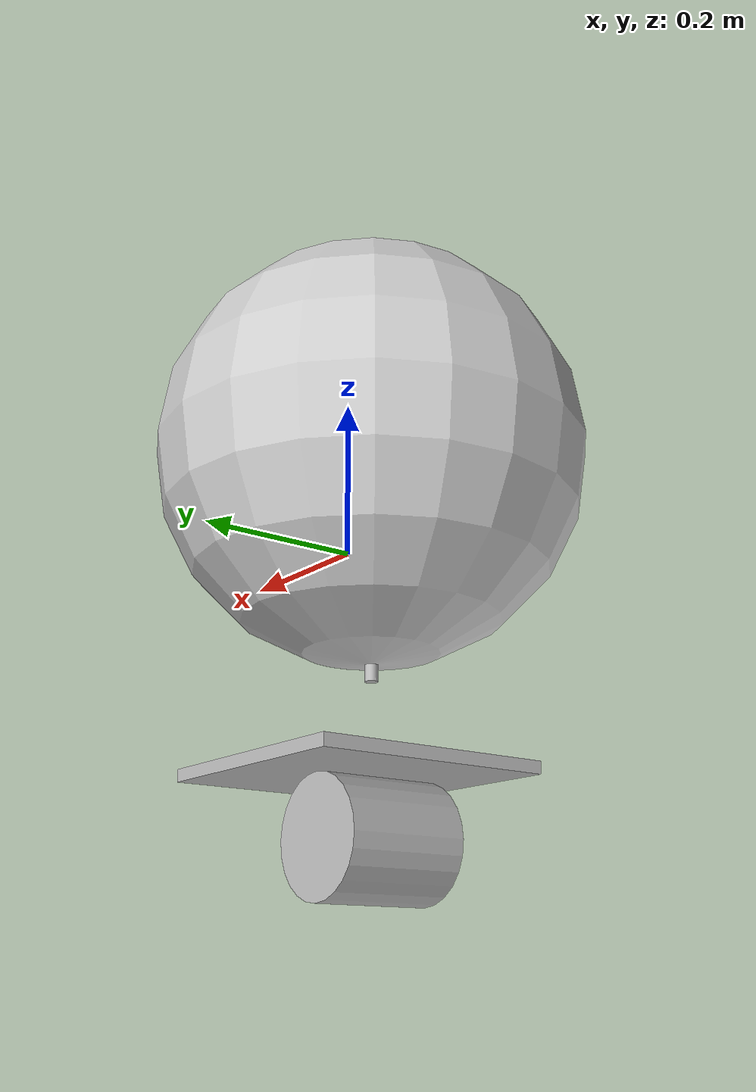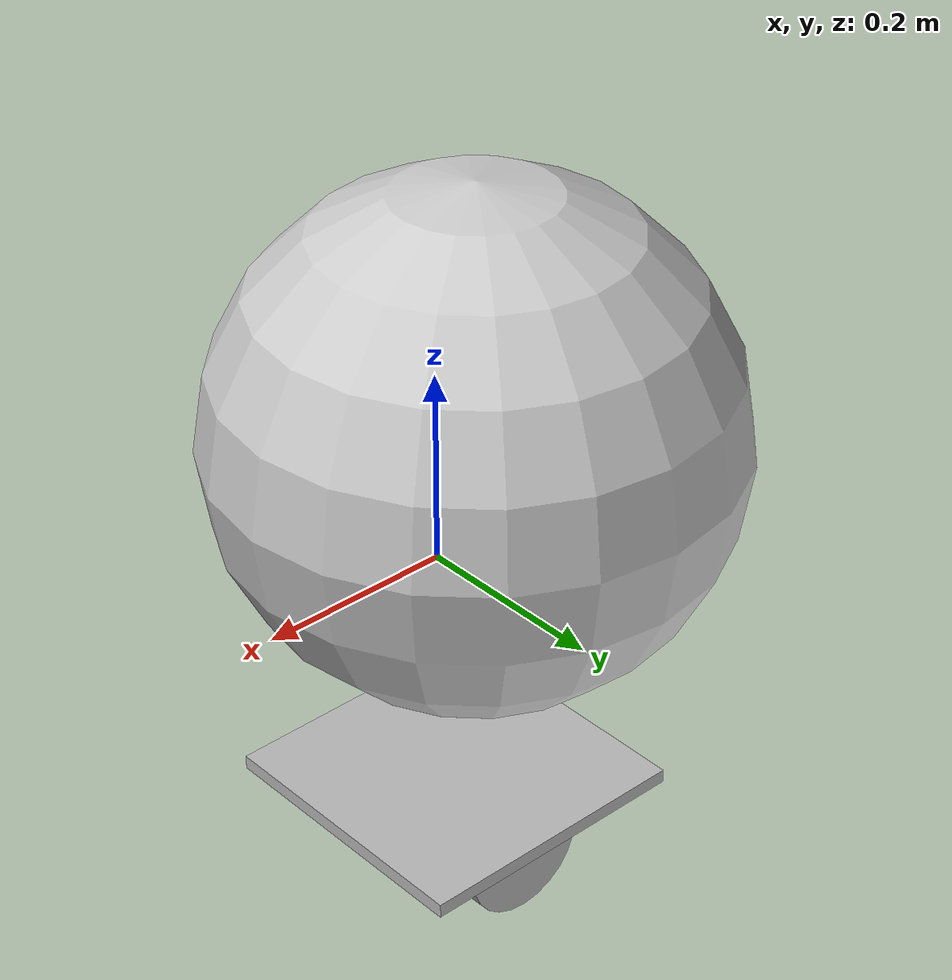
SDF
<?xml version='1.0' encoding='utf-8'?>
<sdf version="1.6">
  <model name="ctu_cras_norlab_balloon_sensor_config_1">
    <link name="base_link">
      <inertial>
        <mass>0.001</mass>
        <inertia>
          <ixx>1.66667e-10</ixx>
          <ixy>0</ixy>
          <ixz>0</ixz>
          <iyy>1.66667e-10</iyy>
          <iyz>0</iyz>
          <izz>1.66667e-10</izz>
        </inertia>
      </inertial>
    </link>
    <link name="reel">
      <pose>-0.05 0 -0.35 0 -0 0</pose>
      <inertial>
        <mass>1</mass>
        <inertia>
          <ixx>1.66667e-07</ixx>
          <ixy>0</ixy>
          <ixz>0</ixz>
          <iyy>1.66667e-07</iyy>
          <iyz>0</iyz>
          <izz>1.66667e-07</izz>
        </inertia>
      </inertial>
      <collision name="reel_collision">
        <pose>0 0 0 -1.5707963267948966 1.5707963267948966 0</pose>
        <geometry>
          <cylinder>
            <length>0.15</length>
            <radius>0.07</radius>
          </cylinder>
        </geometry>
      </collision>
      <visual name="reel_visual">
        <pose>0 0 0 -1.5707963267948966 1.5707963267948966 0</pose>
        <geometry>
          <cylinder>
            <length>0.15</length>
            <radius>0.07</radius>
          </cylinder>
        </geometry>
      </visual>
      <visual name="reel_visual_1">
        <pose>0.03 0 0.08 0 -0 0</pose>
        <geometry>
          <mesh>
            <scale>2 2 1</scale>
            <uri>meshes/apriltag.dae</uri>
          </mesh>
        </geometry>
      </visual>
    </link>
    <joint name="intermediate_j" type="fixed">
      <child>reel</child>
      <parent>base_link</parent>
      <axis>
        <dynamics>
          <spring_reference>0</spring_reference>
          <spring_stiffness>0</spring_stiffness>
        </dynamics>
        <xyz>0 0 1</xyz>
        <use_parent_model_frame>0</use_parent_model_frame>
        <limit>
          <lower>-1e+16</lower>
          <upper>1e+16</upper>
        </limit>
      </axis>
      <physics>
        <ode>
          <limit>
            <cfm>0</cfm>
            <erp>0.2</erp>
          </limit>
        </ode>
      </physics>
    </joint>
    <link name="ball_j_x">
      <pose>-0.05 0 -0.35 0 -0 0</pose>
      <inertial>
        <mass>0.001</mass>
        <inertia>
          <ixx>1.66667e-10</ixx>
          <ixy>0</ixy>
          <ixz>0</ixz>
          <iyy>1.66667e-10</iyy>
          <iyz>0</iyz>
          <izz>1.66667e-10</izz>
        </inertia>
      </inertial>
    </link>
    <joint name="ball_j_x_j" type="revolute">
      <child>ball_j_x</child>
      <parent>reel</parent>
      <axis>
        <xyz>1 0 0</xyz>
        <limit>
          <lower>-0.3</lower>
          <upper>0.3</upper>
          <effort>1</effort>
          <velocity>1</velocity>
        </limit>
        <dynamics>
          <damping>0</damping>
          <friction>0.05</friction>
          <spring_reference>0</spring_reference>
          <spring_stiffness>0</spring_stiffness>
        </dynamics>
        <use_parent_model_frame>0</use_parent_model_frame>
      </axis>
    </joint>
    <link name="ball_j_y">
      <pose>-0.05 0 -0.35 0 -0 0</pose>
      <inertial>
        <mass>0.001</mass>
        <inertia>
          <ixx>1.66667e-10</ixx>
          <ixy>0</ixy>
          <ixz>0</ixz>
          <iyy>1.66667e-10</iyy>
          <iyz>0</iyz>
          <izz>1.66667e-10</izz>
        </inertia>
      </inertial>
    </link>
    <joint name="ball_j_y_j" type="revolute">
      <child>ball_j_y</child>
      <parent>ball_j_x</parent>
      <axis>
        <xyz>0 1 0</xyz>
        <limit>
          <lower>-0.3</lower>
          <upper>0.3</upper>
          <effort>1</effort>
          <velocity>1</velocity>
        </limit>
        <dynamics>
          <damping>0</damping>
          <friction>0.05</friction>
          <spring_reference>0</spring_reference>
          <spring_stiffness>0</spring_stiffness>
        </dynamics>
        <use_parent_model_frame>0</use_parent_model_frame>
      </axis>
    </joint>
    <link name="string">
      <pose>-0.05 0 -0.35 0 -0 0</pose>
      <inertial>
        <mass>0.001</mass>
        <inertia>
          <ixx>1.66667e-10</ixx>
          <ixy>0</ixy>
          <ixz>0</ixz>
          <iyy>1.66667e-10</iyy>
          <iyz>0</iyz>
          <izz>1.66667e-10</izz>
        </inertia>
      </inertial>
    </link>
    <joint name="ball_j_z_j" type="revolute">
      <child>string</child>
      <parent>ball_j_y</parent>
      <axis>
        <xyz>0 0 1</xyz>
        <limit>
          <lower>-1e+16</lower>
          <upper>1e+16</upper>
        </limit>
        <dynamics>
          <damping>0</damping>
          <friction>0.05</friction>
          <spring_reference>0</spring_reference>
          <spring_stiffness>0</spring_stiffness>
        </dynamics>
        <use_parent_model_frame>0</use_parent_model_frame>
      </axis>
    </joint>
    <link name="balloon">
      <pose>-0.05 0 0.115 0 -0 0</pose>
      <inertial>
        <mass>0.05</mass>
        <inertia>
          <ixx>0.0014045</ixx>
          <ixy>0</ixy>
          <ixz>0</ixz>
          <iyy>0.0014045</iyy>
          <iyz>0</iyz>
          <izz>0.0014045</izz>
        </inertia>
      </inertial>
      <collision name="balloon_collision">
        <geometry>
          <sphere>
            <radius>0.265</radius>
          </sphere>
        </geometry>
      </collision>
      <visual name="balloon_visual">
        <geometry>
          <sphere>
            <radius>0.265</radius>
          </sphere>
        </geometry>
        <material>
          <ambient>0 0 0 0</ambient>
          <diffuse>0.8 0.8 0.8 1</diffuse>
          <specular>1 1 1 0.5</specular>
          <emissive>1 1 1 0.1</emissive>
        </material>
      </visual>
    </link>
    <joint name="string_prismatic_j" type="prismatic">
      <child>balloon</child>
      <parent>string</parent>
      <axis>
        <xyz>0 0 1</xyz>
        <limit>
          <lower>0</lower>
          <upper>15</upper>
          <effort>1</effort>
          <velocity>0.5</velocity>
        </limit>
        <dynamics>
          <spring_reference>0</spring_reference>
          <spring_stiffness>0</spring_stiffness>
        </dynamics>
        <use_parent_model_frame>0</use_parent_model_frame>
      </axis>
    </joint>
    <link name="camera">
      <pose>-0.05 0 -0.16 -3.1415926535897931 0 0</pose>
      <inertial>
        <mass>0.022</mass>
        <inertia>
          <ixx>1.08533e-06</ixx>
          <ixy>0</ixy>
          <ixz>0</ixz>
          <iyy>1.08533e-06</iyy>
          <iyz>0</iyz>
          <izz>7.04e-07</izz>
        </inertia>
      </inertial>
      <collision name="camera_collision">
        <geometry>
          <cylinder>
            <length>0.02</length>
            <radius>0.008</radius>
          </cylinder>
        </geometry>
      </collision>
      <visual name="camera_visual">
        <geometry>
          <cylinder>
            <length>0.02</length>
            <radius>0.008</radius>
          </cylinder>
        </geometry>
      </visual>
      <light name="light_0" type="spot">
        <pose>0.02 0 0 3.1415926535897931 -0.392699 3.1415926535897931</pose>
        <attenuation>
          <range>20</range>
          <linear>0</linear>
          <constant>0.1</constant>
          <quadratic>0.0025</quadratic>
        </attenuation>
        <diffuse>0.8 0.8 0.5 1</diffuse>
        <specular>0.8 0.8 0.5 1</specular>
        <spot>
          <inner_angle>1.0472</inner_angle>
          <outer_angle>1.5708</outer_angle>
          <falloff>1</falloff>
        </spot>
        <direction>0 0 -1</direction>
      </light>
      <light name="light_1" type="spot">
        <pose>0.02 0 0 3.1415926535897931 -0.392699 -1.0472</pose>
        <attenuation>
          <range>20</range>
          <linear>0</linear>
          <constant>0.1</constant>
          <quadratic>0.0025</quadratic>
        </attenuation>
        <diffuse>0.8 0.8 0.5 1</diffuse>
        <specular>0.8 0.8 0.5 1</specular>
        <spot>
          <inner_angle>1.0472</inner_angle>
          <outer_angle>1.5708</outer_angle>
          <falloff>1</falloff>
        </spot>
        <direction>0 0 -1</direction>
      </light>
      <light name="light_2" type="spot">
        <pose>0.02 0 0 3.1415926535897931 -0.392699 1.0472</pose>
        <attenuation>
          <range>20</range>
          <linear>0</linear>
          <constant>0.1</constant>
          <quadratic>0.0025</quadratic>
        </attenuation>
        <diffuse>0.8 0.8 0.5 1</diffuse>
        <specular>0.8 0.8 0.5 1</specular>
        <spot>
          <inner_angle>1.0472</inner_angle>
          <outer_angle>1.5708</outer_angle>
          <falloff>1</falloff>
        </spot>
        <direction>0 0 -1</direction>
      </light>
    </link>
    <joint name="camera_j" type="fixed">
      <child>camera</child>
      <parent>balloon</parent>
      <axis>
        <dynamics>
          <spring_reference>0</spring_reference>
          <spring_stiffness>0</spring_stiffness>
        </dynamics>
        <xyz>0 0 1</xyz>
        <use_parent_model_frame>0</use_parent_model_frame>
        <limit>
          <lower>-1e+16</lower>
          <upper>1e+16</upper>
        </limit>
      </axis>
      <physics>
        <ode>
          <limit>
            <cfm>0</cfm>
            <erp>0.2</erp>
          </limit>
        </ode>
      </physics>
    </joint>
    <link name="camera_0">
      <pose>-0.03 0 -0.16 -3.1415926535897931 0.785398 0</pose>
      <inertial>
        <mass>1e-05</mass>
        <inertia>
          <ixx>1.66667e-12</ixx>
          <ixy>0</ixy>
          <ixz>0</ixz>
          <iyy>1.66667e-12</iyy>
          <iyz>0</iyz>
          <izz>1.66667e-12</izz>
        </inertia>
      </inertial>
      <sensor name="camera" type="camera">
        <update_rate>3</update_rate>
        <camera>
          <horizontal_fov>1.5708</horizontal_fov>
          <image>
            <width>800</width>
            <height>600</height>
            <format>R8G8B8</format>
          </image>
          <clip>
            <near>0.05</near>
            <far>50</far>
          </clip>
          <noise>
            <type>gaussian</type>
            <mean>0</mean>
            <stddev>0.007</stddev>
          </noise>
        </camera>
      </sensor>
    </link>
    <joint name="camera_0_j" type="fixed">
      <child>camera_0</child>
      <parent>camera</parent>
      <axis>
        <dynamics>
          <spring_reference>0</spring_reference>
          <spring_stiffness>0</spring_stiffness>
        </dynamics>
        <xyz>0 0 1</xyz>
        <use_parent_model_frame>0</use_parent_model_frame>
        <limit>
          <lower>-1e+16</lower>
          <upper>1e+16</upper>
        </limit>
      </axis>
      <physics>
        <ode>
          <limit>
            <cfm>0</cfm>
            <erp>0.2</erp>
          </limit>
        </ode>
      </physics>
    </joint>
    <link name="camera_1">
      <pose>-0.03 0 -0.16 3.1415926535897931 0.785398 1.5707963267948966</pose>
      <inertial>
        <mass>1e-05</mass>
        <inertia>
          <ixx>1.66667e-12</ixx>
          <ixy>0</ixy>
          <ixz>0</ixz>
          <iyy>1.66667e-12</iyy>
          <iyz>0</iyz>
          <izz>1.66667e-12</izz>
        </inertia>
      </inertial>
      <sensor name="camera" type="camera">
        <update_rate>3</update_rate>
        <camera>
          <horizontal_fov>1.5708</horizontal_fov>
          <image>
            <width>800</width>
            <height>600</height>
            <format>R8G8B8</format>
          </image>
          <clip>
            <near>0.05</near>
            <far>50</far>
          </clip>
          <noise>
            <type>gaussian</type>
            <mean>0</mean>
            <stddev>0.007</stddev>
          </noise>
        </camera>
      </sensor>
    </link>
    <joint name="camera_1_j" type="fixed">
      <child>camera_1</child>
      <parent>camera</parent>
      <axis>
        <dynamics>
          <spring_reference>0</spring_reference>
          <spring_stiffness>0</spring_stiffness>
        </dynamics>
        <xyz>0 0 1</xyz>
        <use_parent_model_frame>0</use_parent_model_frame>
        <limit>
          <lower>-1e+16</lower>
          <upper>1e+16</upper>
        </limit>
      </axis>
      <physics>
        <ode>
          <limit>
            <cfm>0</cfm>
            <erp>0.2</erp>
          </limit>
        </ode>
      </physics>
    </joint>
    <link name="camera_2">
      <pose>-0.03 0 -0.16 3.1415926535897931 0.785398 3.1415926535897931</pose>
      <inertial>
        <mass>1e-05</mass>
        <inertia>
          <ixx>1.66667e-12</ixx>
          <ixy>0</ixy>
          <ixz>0</ixz>
          <iyy>1.66667e-12</iyy>
          <iyz>0</iyz>
          <izz>1.66667e-12</izz>
        </inertia>
      </inertial>
      <sensor name="camera" type="camera">
        <update_rate>3</update_rate>
        <camera>
          <horizontal_fov>1.5708</horizontal_fov>
          <image>
            <width>800</width>
            <height>600</height>
            <format>R8G8B8</format>
          </image>
          <clip>
            <near>0.05</near>
            <far>50</far>
          </clip>
          <noise>
            <type>gaussian</type>
            <mean>0</mean>
            <stddev>0.007</stddev>
          </noise>
        </camera>
      </sensor>
    </link>
    <joint name="camera_2_j" type="fixed">
      <child>camera_2</child>
      <parent>camera</parent>
      <axis>
        <dynamics>
          <spring_reference>0</spring_reference>
          <spring_stiffness>0</spring_stiffness>
        </dynamics>
        <xyz>0 0 1</xyz>
        <use_parent_model_frame>0</use_parent_model_frame>
        <limit>
          <lower>-1e+16</lower>
          <upper>1e+16</upper>
        </limit>
      </axis>
      <physics>
        <ode>
          <limit>
            <cfm>0</cfm>
            <erp>0.2</erp>
          </limit>
        </ode>
      </physics>
    </joint>
    <link name="camera_3">
      <pose>-0.03 0 -0.16 -3.1415926535897931 0.785398 -1.5707963267948966</pose>
      <inertial>
        <mass>1e-05</mass>
        <inertia>
          <ixx>1.66667e-12</ixx>
          <ixy>0</ixy>
          <ixz>0</ixz>
          <iyy>1.66667e-12</iyy>
          <iyz>0</iyz>
          <izz>1.66667e-12</izz>
        </inertia>
      </inertial>
      <sensor name="camera" type="camera">
        <update_rate>3</update_rate>
        <camera>
          <horizontal_fov>1.5708</horizontal_fov>
          <image>
            <width>800</width>
            <height>600</height>
            <format>R8G8B8</format>
          </image>
          <clip>
            <near>0.05</near>
            <far>50</far>
          </clip>
          <noise>
            <type>gaussian</type>
            <mean>0</mean>
            <stddev>0.007</stddev>
          </noise>
        </camera>
      </sensor>
    </link>
    <joint name="camera_3_j" type="fixed">
      <child>camera_3</child>
      <parent>camera</parent>
      <axis>
        <dynamics>
          <spring_reference>0</spring_reference>
          <spring_stiffness>0</spring_stiffness>
        </dynamics>
        <xyz>0 0 1</xyz>
        <use_parent_model_frame>0</use_parent_model_frame>
        <limit>
          <lower>-1e+16</lower>
          <upper>1e+16</upper>
        </limit>
      </axis>
      <physics>
        <ode>
          <limit>
            <cfm>0</cfm>
            <erp>0.2</erp>
          </limit>
        </ode>
      </physics>
    </joint>
    <link name="camera_4">
      <pose>-0.03 0 -0.16 3.1415926535897931 1.5707963267948966 0</pose>
      <inertial>
        <mass>1e-05</mass>
        <inertia>
          <ixx>1.66667e-12</ixx>
          <ixy>0</ixy>
          <ixz>0</ixz>
          <iyy>1.66667e-12</iyy>
          <iyz>0</iyz>
          <izz>1.66667e-12</izz>
        </inertia>
      </inertial>
      <sensor name="camera" type="camera">
        <update_rate>3</update_rate>
        <camera>
          <horizontal_fov>1.5708</horizontal_fov>
          <image>
            <width>800</width>
            <height>600</height>
            <format>R8G8B8</format>
          </image>
          <clip>
            <near>0.05</near>
            <far>50</far>
          </clip>
          <noise>
            <type>gaussian</type>
            <mean>0</mean>
            <stddev>0.007</stddev>
          </noise>
        </camera>
      </sensor>
    </link>
    <joint name="camera_4_j" type="fixed">
      <child>camera_4</child>
      <parent>camera</parent>
      <axis>
        <dynamics>
          <spring_reference>0</spring_reference>
          <spring_stiffness>0</spring_stiffness>
        </dynamics>
        <xyz>0 0 1</xyz>
        <use_parent_model_frame>0</use_parent_model_frame>
        <limit>
          <lower>-1e+16</lower>
          <upper>1e+16</upper>
        </limit>
      </axis>
      <physics>
        <ode>
          <limit>
            <cfm>0</cfm>
            <erp>0.2</erp>
          </limit>
        </ode>
      </physics>
    </joint>
  </model>
</sdf>
